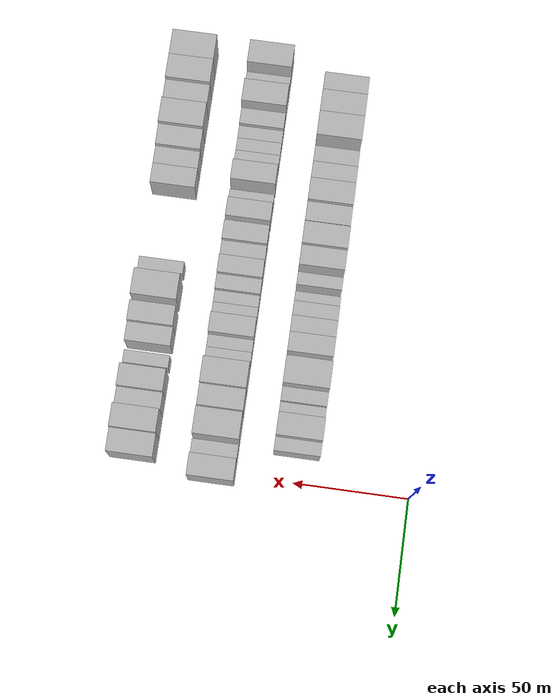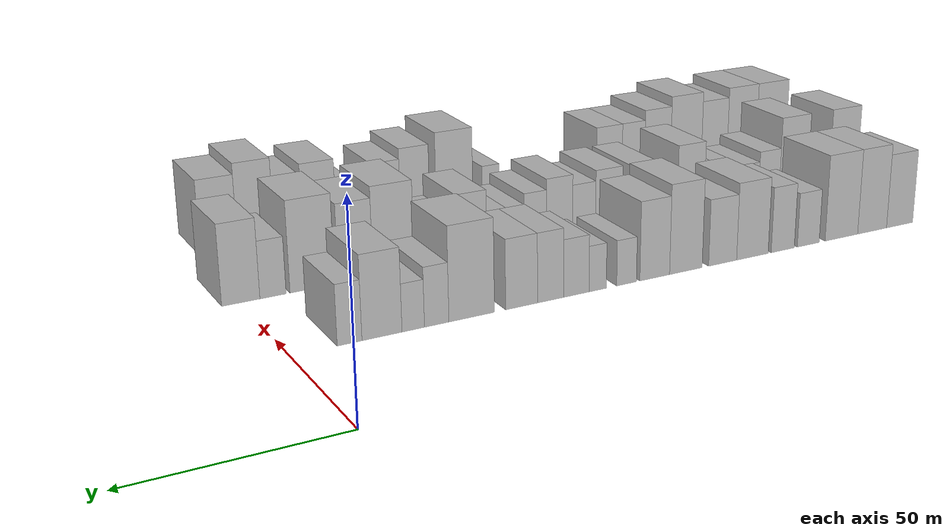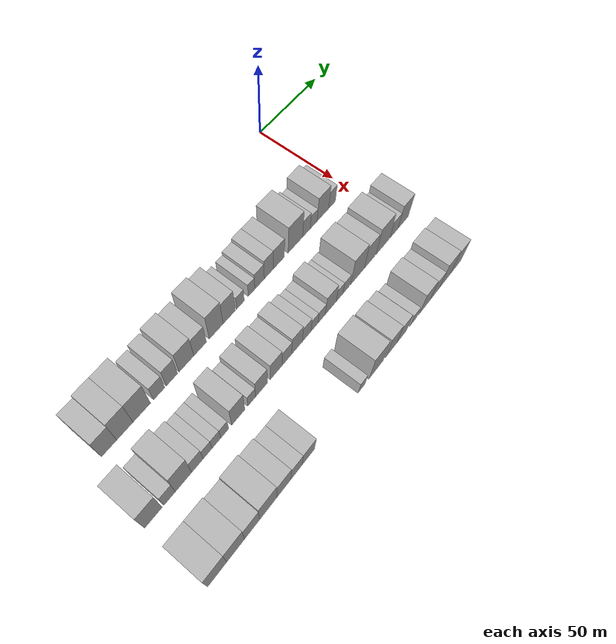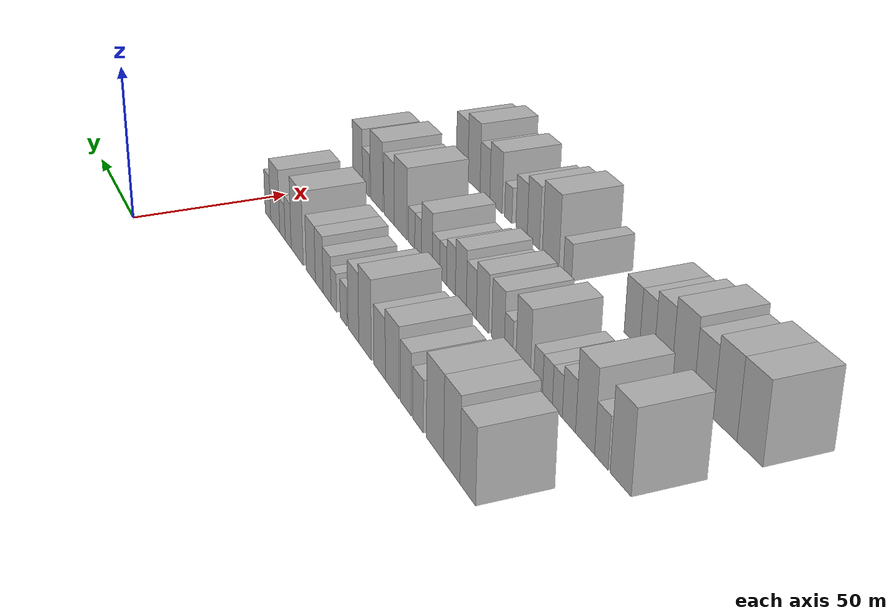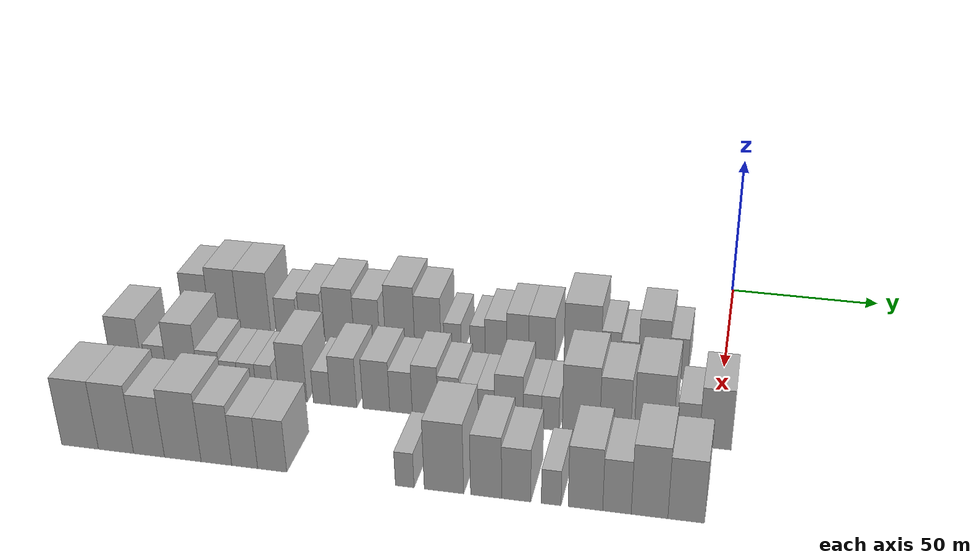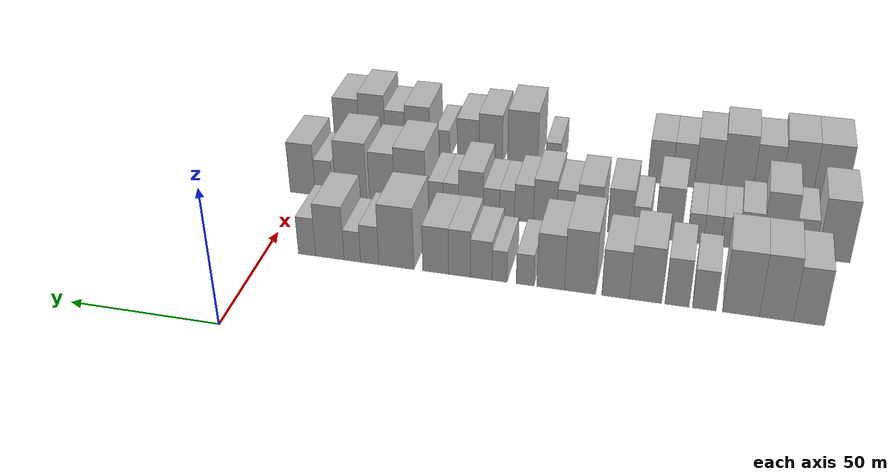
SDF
<sdf version="1.6">
 <world name="default">
  <model name="building_19">
   <static>1</static>
   <pose>50.0000 -176.7183 0 0.000000 0.000000 0.000000</pose>
   <link name="link">
    <pose>0 0 10.50 0 0 0</pose>
    <collision name="collision"><geometry><box><size>20.0000 9.3626 21.0000</size></box></geometry></collision>
    <visual name="visual">
     <cast_shadows>0</cast_shadows>
     <geometry><box><size>20.0000 9.3626 21.0000</size></box></geometry>
     <material>
      <script>
       <uri>model://HANNAS_wall/materials/scripts</uri>
       <uri>model://HANNAS_wall/materials/textures</uri>
       <name>vrc/HANNAS_wall</name>
      </script>
     </material>
    </visual>
   </link>
  </model>
  <model name="building_20">
   <static>1</static>
   <pose>50.0000 -166.9501 0 0.000000 0.000000 0.000000</pose>
   <link name="link">
    <pose>0 0 12.00 0 0 0</pose>
    <collision name="collision"><geometry><box><size>20.0000 10.1739 24.0000</size></box></geometry></collision>
    <visual name="visual">
     <cast_shadows>0</cast_shadows>
     <geometry><box><size>20.0000 10.1739 24.0000</size></box></geometry>
     <material>
      <script>
       <uri>model://HANNAS_wall/materials/scripts</uri>
       <uri>model://HANNAS_wall/materials/textures</uri>
       <name>vrc/HANNAS_wall</name>
      </script>
     </material>
    </visual>
   </link>
  </model>
  <model name="building_21">
   <static>1</static>
   <pose>50.0000 -156.2615 0 0.000000 0.000000 0.000000</pose>
   <link name="link">
    <pose>0 0 12.00 0 0 0</pose>
    <collision name="collision"><geometry><box><size>20.0000 11.2033 24.0000</size></box></geometry></collision>
    <visual name="visual">
     <cast_shadows>0</cast_shadows>
     <geometry><box><size>20.0000 11.2033 24.0000</size></box></geometry>
     <material>
      <script>
       <uri>model://HANNAS_wall/materials/scripts</uri>
       <uri>model://HANNAS_wall/materials/textures</uri>
       <name>vrc/HANNAS_wall</name>
      </script>
     </material>
    </visual>
   </link>
  </model>
  <model name="building_22">
   <static>1</static>
   <pose>50.0000 -144.9928 0 0.000000 0.000000 0.000000</pose>
   <link name="link">
    <pose>0 0 7.50 0 0 0</pose>
    <collision name="collision"><geometry><box><size>20.0000 7.3341 15.0000</size></box></geometry></collision>
    <visual name="visual">
     <cast_shadows>0</cast_shadows>
     <geometry><box><size>20.0000 7.3341 15.0000</size></box></geometry>
     <material>
      <script>
       <uri>model://HANNAS_wall/materials/scripts</uri>
       <uri>model://HANNAS_wall/materials/textures</uri>
       <name>vrc/HANNAS_wall</name>
      </script>
     </material>
    </visual>
   </link>
  </model>
  <model name="building_23">
   <static>1</static>
   <pose>50.0000 -136.5323 0 0.000000 0.000000 0.000000</pose>
   <link name="link">
    <pose>0 0 9.00 0 0 0</pose>
    <collision name="collision"><geometry><box><size>20.0000 7.5868 18.0000</size></box></geometry></collision>
    <visual name="visual">
     <cast_shadows>0</cast_shadows>
     <geometry><box><size>20.0000 7.5868 18.0000</size></box></geometry>
     <material>
      <script>
       <uri>model://HANNAS_wall/materials/scripts</uri>
       <uri>model://HANNAS_wall/materials/textures</uri>
       <name>vrc/HANNAS_wall</name>
      </script>
     </material>
    </visual>
   </link>
  </model>
  <model name="building_24">
   <static>1</static>
   <pose>50.0000 -126.6747 0 0.000000 0.000000 0.000000</pose>
   <link name="link">
    <pose>0 0 10.50 0 0 0</pose>
    <collision name="collision"><geometry><box><size>20.0000 10.1284 21.0000</size></box></geometry></collision>
    <visual name="visual">
     <cast_shadows>0</cast_shadows>
     <geometry><box><size>20.0000 10.1284 21.0000</size></box></geometry>
     <material>
      <script>
       <uri>model://HANNAS_wall/materials/scripts</uri>
       <uri>model://HANNAS_wall/materials/textures</uri>
       <name>vrc/HANNAS_wall</name>
      </script>
     </material>
    </visual>
   </link>
  </model>
  <model name="building_25">
   <static>1</static>
   <pose>50.0000 -117.2045 0 0.000000 0.000000 0.000000</pose>
   <link name="link">
    <pose>0 0 9.00 0 0 0</pose>
    <collision name="collision"><geometry><box><size>20.0000 8.8121 18.0000</size></box></geometry></collision>
    <visual name="visual">
     <cast_shadows>0</cast_shadows>
     <geometry><box><size>20.0000 8.8121 18.0000</size></box></geometry>
     <material>
      <script>
       <uri>model://HANNAS_wall/materials/scripts</uri>
       <uri>model://HANNAS_wall/materials/textures</uri>
       <name>vrc/HANNAS_wall</name>
      </script>
     </material>
    </visual>
   </link>
  </model>
  <model name="building_26">
   <static>1</static>
   <pose>50.0000 -105.8150 0 0.000000 0.000000 0.000000</pose>
   <link name="link">
    <pose>0 0 12.00 0 0 0</pose>
    <collision name="collision"><geometry><box><size>20.0000 9.9670 24.0000</size></box></geometry></collision>
    <visual name="visual">
     <cast_shadows>0</cast_shadows>
     <geometry><box><size>20.0000 9.9670 24.0000</size></box></geometry>
     <material>
      <script>
       <uri>model://HANNAS_wall/materials/scripts</uri>
       <uri>model://HANNAS_wall/materials/textures</uri>
       <name>vrc/HANNAS_wall</name>
      </script>
     </material>
    </visual>
   </link>
  </model>
  <model name="building_27">
   <static>1</static>
   <pose>50.0000 -96.3800 0 0.000000 0.000000 0.000000</pose>
   <link name="link">
    <pose>0 0 10.50 0 0 0</pose>
    <collision name="collision"><geometry><box><size>20.0000 8.9029 21.0000</size></box></geometry></collision>
    <visual name="visual">
     <cast_shadows>0</cast_shadows>
     <geometry><box><size>20.0000 8.9029 21.0000</size></box></geometry>
     <material>
      <script>
       <uri>model://HANNAS_wall/materials/scripts</uri>
       <uri>model://HANNAS_wall/materials/textures</uri>
       <name>vrc/HANNAS_wall</name>
      </script>
     </material>
    </visual>
   </link>
  </model>
  <model name="building_28">
   <static>1</static>
   <pose>50.0000 -88.0359 0 0.000000 0.000000 0.000000</pose>
   <link name="link">
    <pose>0 0 6.00 0 0 0</pose>
    <collision name="collision"><geometry><box><size>20.0000 5.7853 12.0000</size></box></geometry></collision>
    <visual name="visual">
     <cast_shadows>0</cast_shadows>
     <geometry><box><size>20.0000 5.7853 12.0000</size></box></geometry>
     <material>
      <script>
       <uri>model://HANNAS_wall/materials/scripts</uri>
       <uri>model://HANNAS_wall/materials/textures</uri>
       <name>vrc/HANNAS_wall</name>
      </script>
     </material>
    </visual>
   </link>
  </model>
  <model name="building_29">
   <static>1</static>
   <pose>50.0000 -79.6568 0 0.000000 0.000000 0.000000</pose>
   <link name="link">
    <pose>0 0 6.00 0 0 0</pose>
    <collision name="collision"><geometry><box><size>20.0000 4.9729 12.0000</size></box></geometry></collision>
    <visual name="visual">
     <cast_shadows>0</cast_shadows>
     <geometry><box><size>20.0000 4.9729 12.0000</size></box></geometry>
     <material>
      <script>
       <uri>model://HANNAS_wall/materials/scripts</uri>
       <uri>model://HANNAS_wall/materials/textures</uri>
       <name>vrc/HANNAS_wall</name>
      </script>
     </material>
    </visual>
   </link>
  </model>
  <model name="building_30">
   <static>1</static>
   <pose>50.0000 -73.5913 0 0.000000 0.000000 0.000000</pose>
   <link name="link">
    <pose>0 0 7.50 0 0 0</pose>
    <collision name="collision"><geometry><box><size>20.0000 7.1581 15.0000</size></box></geometry></collision>
    <visual name="visual">
     <cast_shadows>0</cast_shadows>
     <geometry><box><size>20.0000 7.1581 15.0000</size></box></geometry>
     <material>
      <script>
       <uri>model://HANNAS_wall/materials/scripts</uri>
       <uri>model://HANNAS_wall/materials/textures</uri>
       <name>vrc/HANNAS_wall</name>
      </script>
     </material>
    </visual>
   </link>
  </model>
  <model name="building_31">
   <static>1</static>
   <pose>50.0000 -66.3682 0 0.000000 0.000000 0.000000</pose>
   <link name="link">
    <pose>0 0 9.00 0 0 0</pose>
    <collision name="collision"><geometry><box><size>20.0000 7.2880 18.0000</size></box></geometry></collision>
    <visual name="visual">
     <cast_shadows>0</cast_shadows>
     <geometry><box><size>20.0000 7.2880 18.0000</size></box></geometry>
     <material>
      <script>
       <uri>model://HANNAS_wall/materials/scripts</uri>
       <uri>model://HANNAS_wall/materials/textures</uri>
       <name>vrc/HANNAS_wall</name>
      </script>
     </material>
    </visual>
   </link>
  </model>
  <model name="building_32">
   <static>1</static>
   <pose>50.0000 -58.3895 0 0.000000 0.000000 0.000000</pose>
   <link name="link">
    <pose>0 0 9.00 0 0 0</pose>
    <collision name="collision"><geometry><box><size>20.0000 8.6693 18.0000</size></box></geometry></collision>
    <visual name="visual">
     <cast_shadows>0</cast_shadows>
     <geometry><box><size>20.0000 8.6693 18.0000</size></box></geometry>
     <material>
      <script>
       <uri>model://HANNAS_wall/materials/scripts</uri>
       <uri>model://HANNAS_wall/materials/textures</uri>
       <name>vrc/HANNAS_wall</name>
      </script>
     </material>
    </visual>
   </link>
  </model>
  <model name="building_33">
   <static>1</static>
   <pose>50.0000 -45.0629 0 0.000000 0.000000 0.000000</pose>
   <link name="link">
    <pose>0 0 12.00 0 0 0</pose>
    <collision name="collision"><geometry><box><size>20.0000 11.9839 24.0000</size></box></geometry></collision>
    <visual name="visual">
     <cast_shadows>0</cast_shadows>
     <geometry><box><size>20.0000 11.9839 24.0000</size></box></geometry>
     <material>
      <script>
       <uri>model://HANNAS_wall/materials/scripts</uri>
       <uri>model://HANNAS_wall/materials/textures</uri>
       <name>vrc/HANNAS_wall</name>
      </script>
     </material>
    </visual>
   </link>
  </model>
  <model name="building_34">
   <static>1</static>
   <pose>50.0000 -35.9239 0 0.000000 0.000000 0.000000</pose>
   <link name="link">
    <pose>0 0 7.50 0 0 0</pose>
    <collision name="collision"><geometry><box><size>20.0000 6.2943 15.0000</size></box></geometry></collision>
    <visual name="visual">
     <cast_shadows>0</cast_shadows>
     <geometry><box><size>20.0000 6.2943 15.0000</size></box></geometry>
     <material>
      <script>
       <uri>model://HANNAS_wall/materials/scripts</uri>
       <uri>model://HANNAS_wall/materials/textures</uri>
       <name>vrc/HANNAS_wall</name>
      </script>
     </material>
    </visual>
   </link>
  </model>
  <model name="building_35">
   <static>1</static>
   <pose>50.0000 -29.9349 0 0.000000 0.000000 0.000000</pose>
   <link name="link">
    <pose>0 0 6.00 0 0 0</pose>
    <collision name="collision"><geometry><box><size>20.0000 5.6836 12.0000</size></box></geometry></collision>
    <visual name="visual">
     <cast_shadows>0</cast_shadows>
     <geometry><box><size>20.0000 5.6836 12.0000</size></box></geometry>
     <material>
      <script>
       <uri>model://HANNAS_wall/materials/scripts</uri>
       <uri>model://HANNAS_wall/materials/textures</uri>
       <name>vrc/HANNAS_wall</name>
      </script>
     </material>
    </visual>
   </link>
  </model>
  <model name="building_36">
   <static>1</static>
   <pose>50.0000 -22.1272 0 0.000000 0.000000 0.000000</pose>
   <link name="link">
    <pose>0 0 10.50 0 0 0</pose>
    <collision name="collision"><geometry><box><size>20.0000 9.9319 21.0000</size></box></geometry></collision>
    <visual name="visual">
     <cast_shadows>0</cast_shadows>
     <geometry><box><size>20.0000 9.9319 21.0000</size></box></geometry>
     <material>
      <script>
       <uri>model://HANNAS_wall/materials/scripts</uri>
       <uri>model://HANNAS_wall/materials/textures</uri>
       <name>vrc/HANNAS_wall</name>
      </script>
     </material>
    </visual>
   </link>
  </model>
  <model name="building_37">
   <static>1</static>
   <pose>50.0000 -14.1544 0 0.000000 0.000000 0.000000</pose>
   <link name="link">
    <pose>0 0 7.50 0 0 0</pose>
    <collision name="collision"><geometry><box><size>20.0000 6.0138 15.0000</size></box></geometry></collision>
    <visual name="visual">
     <cast_shadows>0</cast_shadows>
     <geometry><box><size>20.0000 6.0138 15.0000</size></box></geometry>
     <material>
      <script>
       <uri>model://HANNAS_wall/materials/scripts</uri>
       <uri>model://HANNAS_wall/materials/textures</uri>
       <name>vrc/HANNAS_wall</name>
      </script>
     </material>
    </visual>
   </link>
  </model>
  <model name="building_98">
   <static>1</static>
   <pose>85.0000 -185.4646 0 0.000000 0.000000 0.000000</pose>
   <link name="link">
    <pose>0 0 12.00 0 0 0</pose>
    <collision name="collision"><geometry><box><size>20.0000 10.6071 24.0000</size></box></geometry></collision>
    <visual name="visual">
     <cast_shadows>0</cast_shadows>
     <geometry><box><size>20.0000 10.6071 24.0000</size></box></geometry>
     <material>
      <script>
       <uri>model://HANNAS_wall/materials/scripts</uri>
       <uri>model://HANNAS_wall/materials/textures</uri>
       <name>vrc/HANNAS_wall</name>
      </script>
     </material>
    </visual>
   </link>
  </model>
  <model name="building_99">
   <static>1</static>
   <pose>85.0000 -175.6319 0 0.000000 0.000000 0.000000</pose>
   <link name="link">
    <pose>0 0 7.50 0 0 0</pose>
    <collision name="collision"><geometry><box><size>20.0000 7.0582 15.0000</size></box></geometry></collision>
    <visual name="visual">
     <cast_shadows>0</cast_shadows>
     <geometry><box><size>20.0000 7.0582 15.0000</size></box></geometry>
     <material>
      <script>
       <uri>model://HANNAS_wall/materials/scripts</uri>
       <uri>model://HANNAS_wall/materials/textures</uri>
       <name>vrc/HANNAS_wall</name>
      </script>
     </material>
    </visual>
   </link>
  </model>
  <model name="building_100">
   <static>1</static>
   <pose>85.0000 -166.9667 0 0.000000 0.000000 0.000000</pose>
   <link name="link">
    <pose>0 0 12.00 0 0 0</pose>
    <collision name="collision"><geometry><box><size>20.0000 10.2723 24.0000</size></box></geometry></collision>
    <visual name="visual">
     <cast_shadows>0</cast_shadows>
     <geometry><box><size>20.0000 10.2723 24.0000</size></box></geometry>
     <material>
      <script>
       <uri>model://HANNAS_wall/materials/scripts</uri>
       <uri>model://HANNAS_wall/materials/textures</uri>
       <name>vrc/HANNAS_wall</name>
      </script>
     </material>
    </visual>
   </link>
  </model>
  <model name="building_101">
   <static>1</static>
   <pose>85.0000 -158.1169 0 0.000000 0.000000 0.000000</pose>
   <link name="link">
    <pose>0 0 7.50 0 0 0</pose>
    <collision name="collision"><geometry><box><size>20.0000 7.4273 15.0000</size></box></geometry></collision>
    <visual name="visual">
     <cast_shadows>0</cast_shadows>
     <geometry><box><size>20.0000 7.4273 15.0000</size></box></geometry>
     <material>
      <script>
       <uri>model://HANNAS_wall/materials/scripts</uri>
       <uri>model://HANNAS_wall/materials/textures</uri>
       <name>vrc/HANNAS_wall</name>
      </script>
     </material>
    </visual>
   </link>
  </model>
  <model name="building_102">
   <static>1</static>
   <pose>85.0000 -151.5173 0 0.000000 0.000000 0.000000</pose>
   <link name="link">
    <pose>0 0 6.00 0 0 0</pose>
    <collision name="collision"><geometry><box><size>20.0000 5.7720 12.0000</size></box></geometry></collision>
    <visual name="visual">
     <cast_shadows>0</cast_shadows>
     <geometry><box><size>20.0000 5.7720 12.0000</size></box></geometry>
     <material>
      <script>
       <uri>model://HANNAS_wall/materials/scripts</uri>
       <uri>model://HANNAS_wall/materials/textures</uri>
       <name>vrc/HANNAS_wall</name>
      </script>
     </material>
    </visual>
   </link>
  </model>
  <model name="building_103">
   <static>1</static>
   <pose>85.0000 -145.7244 0 0.000000 0.000000 0.000000</pose>
   <link name="link">
    <pose>0 0 6.00 0 0 0</pose>
    <collision name="collision"><geometry><box><size>20.0000 5.8138 12.0000</size></box></geometry></collision>
    <visual name="visual">
     <cast_shadows>0</cast_shadows>
     <geometry><box><size>20.0000 5.8138 12.0000</size></box></geometry>
     <material>
      <script>
       <uri>model://HANNAS_wall/materials/scripts</uri>
       <uri>model://HANNAS_wall/materials/textures</uri>
       <name>vrc/HANNAS_wall</name>
      </script>
     </material>
    </visual>
   </link>
  </model>
  <model name="building_104">
   <static>1</static>
   <pose>85.0000 -140.1190 0 0.000000 0.000000 0.000000</pose>
   <link name="link">
    <pose>0 0 6.00 0 0 0</pose>
    <collision name="collision"><geometry><box><size>20.0000 5.3971 12.0000</size></box></geometry></collision>
    <visual name="visual">
     <cast_shadows>0</cast_shadows>
     <geometry><box><size>20.0000 5.3971 12.0000</size></box></geometry>
     <material>
      <script>
       <uri>model://HANNAS_wall/materials/scripts</uri>
       <uri>model://HANNAS_wall/materials/textures</uri>
       <name>vrc/HANNAS_wall</name>
      </script>
     </material>
    </visual>
   </link>
  </model>
  <model name="building_105">
   <static>1</static>
   <pose>85.0000 -130.8782 0 0.000000 0.000000 0.000000</pose>
   <link name="link">
    <pose>0 0 10.50 0 0 0</pose>
    <collision name="collision"><geometry><box><size>20.0000 9.0844 21.0000</size></box></geometry></collision>
    <visual name="visual">
     <cast_shadows>0</cast_shadows>
     <geometry><box><size>20.0000 9.0844 21.0000</size></box></geometry>
     <material>
      <script>
       <uri>model://HANNAS_wall/materials/scripts</uri>
       <uri>model://HANNAS_wall/materials/textures</uri>
       <name>vrc/HANNAS_wall</name>
      </script>
     </material>
    </visual>
   </link>
  </model>
  <model name="building_106">
   <static>1</static>
   <pose>85.0000 -121.5744 0 0.000000 0.000000 0.000000</pose>
   <link name="link">
    <pose>0 0 6.00 0 0 0</pose>
    <collision name="collision"><geometry><box><size>20.0000 5.5231 12.0000</size></box></geometry></collision>
    <visual name="visual">
     <cast_shadows>0</cast_shadows>
     <geometry><box><size>20.0000 5.5231 12.0000</size></box></geometry>
     <material>
      <script>
       <uri>model://HANNAS_wall/materials/scripts</uri>
       <uri>model://HANNAS_wall/materials/textures</uri>
       <name>vrc/HANNAS_wall</name>
      </script>
     </material>
    </visual>
   </link>
  </model>
  <model name="building_107">
   <static>1</static>
   <pose>85.0000 -114.5613 0 0.000000 0.000000 0.000000</pose>
   <link name="link">
    <pose>0 0 9.00 0 0 0</pose>
    <collision name="collision"><geometry><box><size>20.0000 8.5031 18.0000</size></box></geometry></collision>
    <visual name="visual">
     <cast_shadows>0</cast_shadows>
     <geometry><box><size>20.0000 8.5031 18.0000</size></box></geometry>
     <material>
      <script>
       <uri>model://HANNAS_wall/materials/scripts</uri>
       <uri>model://HANNAS_wall/materials/textures</uri>
       <name>vrc/HANNAS_wall</name>
      </script>
     </material>
    </visual>
   </link>
  </model>
  <model name="building_108">
   <static>1</static>
   <pose>85.0000 -104.0342 0 0.000000 0.000000 0.000000</pose>
   <link name="link">
    <pose>0 0 9.00 0 0 0</pose>
    <collision name="collision"><geometry><box><size>20.0000 8.5511 18.0000</size></box></geometry></collision>
    <visual name="visual">
     <cast_shadows>0</cast_shadows>
     <geometry><box><size>20.0000 8.5511 18.0000</size></box></geometry>
     <material>
      <script>
       <uri>model://HANNAS_wall/materials/scripts</uri>
       <uri>model://HANNAS_wall/materials/textures</uri>
       <name>vrc/HANNAS_wall</name>
      </script>
     </material>
    </visual>
   </link>
  </model>
  <model name="building_109">
   <static>1</static>
   <pose>85.0000 -96.1743 0 0.000000 0.000000 0.000000</pose>
   <link name="link">
    <pose>0 0 7.50 0 0 0</pose>
    <collision name="collision"><geometry><box><size>20.0000 7.1687 15.0000</size></box></geometry></collision>
    <visual name="visual">
     <cast_shadows>0</cast_shadows>
     <geometry><box><size>20.0000 7.1687 15.0000</size></box></geometry>
     <material>
      <script>
       <uri>model://HANNAS_wall/materials/scripts</uri>
       <uri>model://HANNAS_wall/materials/textures</uri>
       <name>vrc/HANNAS_wall</name>
      </script>
     </material>
    </visual>
   </link>
  </model>
  <model name="building_110">
   <static>1</static>
   <pose>85.0000 -88.5409 0 0.000000 0.000000 0.000000</pose>
   <link name="link">
    <pose>0 0 9.00 0 0 0</pose>
    <collision name="collision"><geometry><box><size>20.0000 8.0981 18.0000</size></box></geometry></collision>
    <visual name="visual">
     <cast_shadows>0</cast_shadows>
     <geometry><box><size>20.0000 8.0981 18.0000</size></box></geometry>
     <material>
      <script>
       <uri>model://HANNAS_wall/materials/scripts</uri>
       <uri>model://HANNAS_wall/materials/textures</uri>
       <name>vrc/HANNAS_wall</name>
      </script>
     </material>
    </visual>
   </link>
  </model>
  <model name="building_111">
   <static>1</static>
   <pose>85.0000 -81.1502 0 0.000000 0.000000 0.000000</pose>
   <link name="link">
    <pose>0 0 7.50 0 0 0</pose>
    <collision name="collision"><geometry><box><size>20.0000 6.6832 15.0000</size></box></geometry></collision>
    <visual name="visual">
     <cast_shadows>0</cast_shadows>
     <geometry><box><size>20.0000 6.6832 15.0000</size></box></geometry>
     <material>
      <script>
       <uri>model://HANNAS_wall/materials/scripts</uri>
       <uri>model://HANNAS_wall/materials/textures</uri>
       <name>vrc/HANNAS_wall</name>
      </script>
     </material>
    </visual>
   </link>
  </model>
  <model name="building_112">
   <static>1</static>
   <pose>85.0000 -75.1348 0 0.000000 0.000000 0.000000</pose>
   <link name="link">
    <pose>0 0 6.00 0 0 0</pose>
    <collision name="collision"><geometry><box><size>20.0000 5.3477 12.0000</size></box></geometry></collision>
    <visual name="visual">
     <cast_shadows>0</cast_shadows>
     <geometry><box><size>20.0000 5.3477 12.0000</size></box></geometry>
     <material>
      <script>
       <uri>model://HANNAS_wall/materials/scripts</uri>
       <uri>model://HANNAS_wall/materials/textures</uri>
       <name>vrc/HANNAS_wall</name>
      </script>
     </material>
    </visual>
   </link>
  </model>
  <model name="building_113">
   <static>1</static>
   <pose>85.0000 -69.5720 0 0.000000 0.000000 0.000000</pose>
   <link name="link">
    <pose>0 0 6.00 0 0 0</pose>
    <collision name="collision"><geometry><box><size>20.0000 5.7778 12.0000</size></box></geometry></collision>
    <visual name="visual">
     <cast_shadows>0</cast_shadows>
     <geometry><box><size>20.0000 5.7778 12.0000</size></box></geometry>
     <material>
      <script>
       <uri>model://HANNAS_wall/materials/scripts</uri>
       <uri>model://HANNAS_wall/materials/textures</uri>
       <name>vrc/HANNAS_wall</name>
      </script>
     </material>
    </visual>
   </link>
  </model>
  <model name="building_114">
   <static>1</static>
   <pose>85.0000 -62.2672 0 0.000000 0.000000 0.000000</pose>
   <link name="link">
    <pose>0 0 9.00 0 0 0</pose>
    <collision name="collision"><geometry><box><size>20.0000 8.8319 18.0000</size></box></geometry></collision>
    <visual name="visual">
     <cast_shadows>0</cast_shadows>
     <geometry><box><size>20.0000 8.8319 18.0000</size></box></geometry>
     <material>
      <script>
       <uri>model://HANNAS_wall/materials/scripts</uri>
       <uri>model://HANNAS_wall/materials/textures</uri>
       <name>vrc/HANNAS_wall</name>
      </script>
     </material>
    </visual>
   </link>
  </model>
  <model name="building_115">
   <static>1</static>
   <pose>85.0000 -55.0907 0 0.000000 0.000000 0.000000</pose>
   <link name="link">
    <pose>0 0 6.00 0 0 0</pose>
    <collision name="collision"><geometry><box><size>20.0000 5.5210 12.0000</size></box></geometry></collision>
    <visual name="visual">
     <cast_shadows>0</cast_shadows>
     <geometry><box><size>20.0000 5.5210 12.0000</size></box></geometry>
     <material>
      <script>
       <uri>model://HANNAS_wall/materials/scripts</uri>
       <uri>model://HANNAS_wall/materials/textures</uri>
       <name>vrc/HANNAS_wall</name>
      </script>
     </material>
    </visual>
   </link>
  </model>
  <model name="building_116">
   <static>1</static>
   <pose>85.0000 -49.6133 0 0.000000 0.000000 0.000000</pose>
   <link name="link">
    <pose>0 0 6.00 0 0 0</pose>
    <collision name="collision"><geometry><box><size>20.0000 5.4338 12.0000</size></box></geometry></collision>
    <visual name="visual">
     <cast_shadows>0</cast_shadows>
     <geometry><box><size>20.0000 5.4338 12.0000</size></box></geometry>
     <material>
      <script>
       <uri>model://HANNAS_wall/materials/scripts</uri>
       <uri>model://HANNAS_wall/materials/textures</uri>
       <name>vrc/HANNAS_wall</name>
      </script>
     </material>
    </visual>
   </link>
  </model>
  <model name="building_117">
   <static>1</static>
   <pose>85.0000 -40.2207 0 0.000000 0.000000 0.000000</pose>
   <link name="link">
    <pose>0 0 12.00 0 0 0</pose>
    <collision name="collision"><geometry><box><size>20.0000 11.3514 24.0000</size></box></geometry></collision>
    <visual name="visual">
     <cast_shadows>0</cast_shadows>
     <geometry><box><size>20.0000 11.3514 24.0000</size></box></geometry>
     <material>
      <script>
       <uri>model://HANNAS_wall/materials/scripts</uri>
       <uri>model://HANNAS_wall/materials/textures</uri>
       <name>vrc/HANNAS_wall</name>
      </script>
     </material>
    </visual>
   </link>
  </model>
  <model name="building_118">
   <static>1</static>
   <pose>85.0000 -29.8836 0 0.000000 0.000000 0.000000</pose>
   <link name="link">
    <pose>0 0 10.50 0 0 0</pose>
    <collision name="collision"><geometry><box><size>20.0000 9.3228 21.0000</size></box></geometry></collision>
    <visual name="visual">
     <cast_shadows>0</cast_shadows>
     <geometry><box><size>20.0000 9.3228 21.0000</size></box></geometry>
     <material>
      <script>
       <uri>model://HANNAS_wall/materials/scripts</uri>
       <uri>model://HANNAS_wall/materials/textures</uri>
       <name>vrc/HANNAS_wall</name>
      </script>
     </material>
    </visual>
   </link>
  </model>
  <model name="building_119">
   <static>1</static>
   <pose>85.0000 -18.3812 0 0.000000 0.000000 0.000000</pose>
   <link name="link">
    <pose>0 0 12.00 0 0 0</pose>
    <collision name="collision"><geometry><box><size>20.0000 11.6820 24.0000</size></box></geometry></collision>
    <visual name="visual">
     <cast_shadows>0</cast_shadows>
     <geometry><box><size>20.0000 11.6820 24.0000</size></box></geometry>
     <material>
      <script>
       <uri>model://HANNAS_wall/materials/scripts</uri>
       <uri>model://HANNAS_wall/materials/textures</uri>
       <name>vrc/HANNAS_wall</name>
      </script>
     </material>
    </visual>
   </link>
  </model>
  <model name="building_120">
   <static>1</static>
   <pose>85.0000 -8.1938 0 0.000000 0.000000 0.000000</pose>
   <link name="link">
    <pose>0 0 7.50 0 0 0</pose>
    <collision name="collision"><geometry><box><size>20.0000 6.6928 15.0000</size></box></geometry></collision>
    <visual name="visual">
     <cast_shadows>0</cast_shadows>
     <geometry><box><size>20.0000 6.6928 15.0000</size></box></geometry>
     <material>
      <script>
       <uri>model://HANNAS_wall/materials/scripts</uri>
       <uri>model://HANNAS_wall/materials/textures</uri>
       <name>vrc/HANNAS_wall</name>
      </script>
     </material>
    </visual>
   </link>
  </model>
  <model name="building_121">
   <static>1</static>
   <pose>85.0000 -0.0575 0 0.000000 0.000000 0.000000</pose>
   <link name="link">
    <pose>0 0 10.50 0 0 0</pose>
    <collision name="collision"><geometry><box><size>20.0000 9.5799 21.0000</size></box></geometry></collision>
    <visual name="visual">
     <cast_shadows>0</cast_shadows>
     <geometry><box><size>20.0000 9.5799 21.0000</size></box></geometry>
     <material>
      <script>
       <uri>model://HANNAS_wall/materials/scripts</uri>
       <uri>model://HANNAS_wall/materials/textures</uri>
       <name>vrc/HANNAS_wall</name>
      </script>
     </material>
    </visual>
   </link>
  </model>
  <model name="building_182">
   <static>1</static>
   <pose>120.0000 -185.1397 0 0.000000 0.000000 0.000000</pose>
   <link name="link">
    <pose>0 0 12.00 0 0 0</pose>
    <collision name="collision"><geometry><box><size>20.0000 11.6709 24.0000</size></box></geometry></collision>
    <visual name="visual">
     <cast_shadows>0</cast_shadows>
     <geometry><box><size>20.0000 11.6709 24.0000</size></box></geometry>
     <material>
      <script>
       <uri>model://HANNAS_wall/materials/scripts</uri>
       <uri>model://HANNAS_wall/materials/textures</uri>
       <name>vrc/HANNAS_wall</name>
      </script>
     </material>
    </visual>
   </link>
  </model>
  <model name="building_183">
   <static>1</static>
   <pose>120.0000 -173.7274 0 0.000000 0.000000 0.000000</pose>
   <link name="link">
    <pose>0 0 12.00 0 0 0</pose>
    <collision name="collision"><geometry><box><size>20.0000 11.1538 24.0000</size></box></geometry></collision>
    <visual name="visual">
     <cast_shadows>0</cast_shadows>
     <geometry><box><size>20.0000 11.1538 24.0000</size></box></geometry>
     <material>
      <script>
       <uri>model://HANNAS_wall/materials/scripts</uri>
       <uri>model://HANNAS_wall/materials/textures</uri>
       <name>vrc/HANNAS_wall</name>
      </script>
     </material>
    </visual>
   </link>
  </model>
  <model name="building_184">
   <static>1</static>
   <pose>120.0000 -163.3151 0 0.000000 0.000000 0.000000</pose>
   <link name="link">
    <pose>0 0 10.50 0 0 0</pose>
    <collision name="collision"><geometry><box><size>20.0000 9.6706 21.0000</size></box></geometry></collision>
    <visual name="visual">
     <cast_shadows>0</cast_shadows>
     <geometry><box><size>20.0000 9.6706 21.0000</size></box></geometry>
     <material>
      <script>
       <uri>model://HANNAS_wall/materials/scripts</uri>
       <uri>model://HANNAS_wall/materials/textures</uri>
       <name>vrc/HANNAS_wall</name>
      </script>
     </material>
    </visual>
   </link>
  </model>
  <model name="building_185">
   <static>1</static>
   <pose>120.0000 -152.7936 0 0.000000 0.000000 0.000000</pose>
   <link name="link">
    <pose>0 0 12.00 0 0 0</pose>
    <collision name="collision"><geometry><box><size>20.0000 11.3725 24.0000</size></box></geometry></collision>
    <visual name="visual">
     <cast_shadows>0</cast_shadows>
     <geometry><box><size>20.0000 11.3725 24.0000</size></box></geometry>
     <material>
      <script>
       <uri>model://HANNAS_wall/materials/scripts</uri>
       <uri>model://HANNAS_wall/materials/textures</uri>
       <name>vrc/HANNAS_wall</name>
      </script>
     </material>
    </visual>
   </link>
  </model>
  <model name="building_186">
   <static>1</static>
   <pose>120.0000 -142.3837 0 0.000000 0.000000 0.000000</pose>
   <link name="link">
    <pose>0 0 10.50 0 0 0</pose>
    <collision name="collision"><geometry><box><size>20.0000 9.4473 21.0000</size></box></geometry></collision>
    <visual name="visual">
     <cast_shadows>0</cast_shadows>
     <geometry><box><size>20.0000 9.4473 21.0000</size></box></geometry>
     <material>
      <script>
       <uri>model://HANNAS_wall/materials/scripts</uri>
       <uri>model://HANNAS_wall/materials/textures</uri>
       <name>vrc/HANNAS_wall</name>
      </script>
     </material>
    </visual>
   </link>
  </model>
  <model name="building_187">
   <static>1</static>
   <pose>120.0000 -133.6986 0 0.000000 0.000000 0.000000</pose>
   <link name="link">
    <pose>0 0 9.00 0 0 0</pose>
    <collision name="collision"><geometry><box><size>20.0000 7.9229 18.0000</size></box></geometry></collision>
    <visual name="visual">
     <cast_shadows>0</cast_shadows>
     <geometry><box><size>20.0000 7.9229 18.0000</size></box></geometry>
     <material>
      <script>
       <uri>model://HANNAS_wall/materials/scripts</uri>
       <uri>model://HANNAS_wall/materials/textures</uri>
       <name>vrc/HANNAS_wall</name>
      </script>
     </material>
    </visual>
   </link>
  </model>
  <model name="building_188">
   <static>1</static>
   <pose>120.0000 -125.3036 0 0.000000 0.000000 0.000000</pose>
   <link name="link">
    <pose>0 0 9.00 0 0 0</pose>
    <collision name="collision"><geometry><box><size>20.0000 8.8672 18.0000</size></box></geometry></collision>
    <visual name="visual">
     <cast_shadows>0</cast_shadows>
     <geometry><box><size>20.0000 8.8672 18.0000</size></box></geometry>
     <material>
      <script>
       <uri>model://HANNAS_wall/materials/scripts</uri>
       <uri>model://HANNAS_wall/materials/textures</uri>
       <name>vrc/HANNAS_wall</name>
      </script>
     </material>
    </visual>
   </link>
  </model>
  <model name="building_189">
   <static>1</static>
   <pose>120.0000 -85.6457 0 0.000000 0.000000 0.000000</pose>
   <link name="link">
    <pose>0 0 6.00 0 0 0</pose>
    <collision name="collision"><geometry><box><size>20.0000 5.4829 12.0000</size></box></geometry></collision>
    <visual name="visual">
     <cast_shadows>0</cast_shadows>
     <geometry><box><size>20.0000 5.4829 12.0000</size></box></geometry>
     <material>
      <script>
       <uri>model://HANNAS_wall/materials/scripts</uri>
       <uri>model://HANNAS_wall/materials/textures</uri>
       <name>vrc/HANNAS_wall</name>
      </script>
     </material>
    </visual>
   </link>
  </model>
  <model name="building_190">
   <static>1</static>
   <pose>120.0000 -74.1627 0 0.000000 0.000000 0.000000</pose>
   <link name="link">
    <pose>0 0 12.00 0 0 0</pose>
    <collision name="collision"><geometry><box><size>20.0000 11.4830 24.0000</size></box></geometry></collision>
    <visual name="visual">
     <cast_shadows>0</cast_shadows>
     <geometry><box><size>20.0000 11.4830 24.0000</size></box></geometry>
     <material>
      <script>
       <uri>model://HANNAS_wall/materials/scripts</uri>
       <uri>model://HANNAS_wall/materials/textures</uri>
       <name>vrc/HANNAS_wall</name>
      </script>
     </material>
    </visual>
   </link>
  </model>
  <model name="building_191">
   <static>1</static>
   <pose>120.0000 -61.9445 0 0.000000 0.000000 0.000000</pose>
   <link name="link">
    <pose>0 0 10.50 0 0 0</pose>
    <collision name="collision"><geometry><box><size>20.0000 8.9535 21.0000</size></box></geometry></collision>
    <visual name="visual">
     <cast_shadows>0</cast_shadows>
     <geometry><box><size>20.0000 8.9535 21.0000</size></box></geometry>
     <material>
      <script>
       <uri>model://HANNAS_wall/materials/scripts</uri>
       <uri>model://HANNAS_wall/materials/textures</uri>
       <name>vrc/HANNAS_wall</name>
      </script>
     </material>
    </visual>
   </link>
  </model>
  <model name="building_192">
   <static>1</static>
   <pose>120.0000 -53.2947 0 0.000000 0.000000 0.000000</pose>
   <link name="link">
    <pose>0 0 9.00 0 0 0</pose>
    <collision name="collision"><geometry><box><size>20.0000 8.3461 18.0000</size></box></geometry></collision>
    <visual name="visual">
     <cast_shadows>0</cast_shadows>
     <geometry><box><size>20.0000 8.3461 18.0000</size></box></geometry>
     <material>
      <script>
       <uri>model://HANNAS_wall/materials/scripts</uri>
       <uri>model://HANNAS_wall/materials/textures</uri>
       <name>vrc/HANNAS_wall</name>
      </script>
     </material>
    </visual>
   </link>
  </model>
  <model name="building_193">
   <static>1</static>
   <pose>120.0000 -43.3179 0 0.000000 0.000000 0.000000</pose>
   <link name="link">
    <pose>0 0 6.00 0 0 0</pose>
    <collision name="collision"><geometry><box><size>20.0000 5.6074 12.0000</size></box></geometry></collision>
    <visual name="visual">
     <cast_shadows>0</cast_shadows>
     <geometry><box><size>20.0000 5.6074 12.0000</size></box></geometry>
     <material>
      <script>
       <uri>model://HANNAS_wall/materials/scripts</uri>
       <uri>model://HANNAS_wall/materials/textures</uri>
       <name>vrc/HANNAS_wall</name>
      </script>
     </material>
    </visual>
   </link>
  </model>
  <model name="building_194">
   <static>1</static>
   <pose>120.0000 -33.6523 0 0.000000 0.000000 0.000000</pose>
   <link name="link">
    <pose>0 0 10.50 0 0 0</pose>
    <collision name="collision"><geometry><box><size>20.0000 9.7238 21.0000</size></box></geometry></collision>
    <visual name="visual">
     <cast_shadows>0</cast_shadows>
     <geometry><box><size>20.0000 9.7238 21.0000</size></box></geometry>
     <material>
      <script>
       <uri>model://HANNAS_wall/materials/scripts</uri>
       <uri>model://HANNAS_wall/materials/textures</uri>
       <name>vrc/HANNAS_wall</name>
      </script>
     </material>
    </visual>
   </link>
  </model>
  <model name="building_195">
   <static>1</static>
   <pose>120.0000 -24.8087 0 0.000000 0.000000 0.000000</pose>
   <link name="link">
    <pose>0 0 9.00 0 0 0</pose>
    <collision name="collision"><geometry><box><size>20.0000 7.9633 18.0000</size></box></geometry></collision>
    <visual name="visual">
     <cast_shadows>0</cast_shadows>
     <geometry><box><size>20.0000 7.9633 18.0000</size></box></geometry>
     <material>
      <script>
       <uri>model://HANNAS_wall/materials/scripts</uri>
       <uri>model://HANNAS_wall/materials/textures</uri>
       <name>vrc/HANNAS_wall</name>
      </script>
     </material>
    </visual>
   </link>
  </model>
  <model name="building_196">
   <static>1</static>
   <pose>120.0000 -15.7405 0 0.000000 0.000000 0.000000</pose>
   <link name="link">
    <pose>0 0 12.00 0 0 0</pose>
    <collision name="collision"><geometry><box><size>20.0000 10.1731 24.0000</size></box></geometry></collision>
    <visual name="visual">
     <cast_shadows>0</cast_shadows>
     <geometry><box><size>20.0000 10.1731 24.0000</size></box></geometry>
     <material>
      <script>
       <uri>model://HANNAS_wall/materials/scripts</uri>
       <uri>model://HANNAS_wall/materials/textures</uri>
       <name>vrc/HANNAS_wall</name>
      </script>
     </material>
    </visual>
   </link>
  </model>
  <model name="building_197">
   <static>1</static>
   <pose>120.0000 -5.6089 0 0.000000 0.000000 0.000000</pose>
   <link name="link">
    <pose>0 0 10.50 0 0 0</pose>
    <collision name="collision"><geometry><box><size>20.0000 10.0900 21.0000</size></box></geometry></collision>
    <visual name="visual">
     <cast_shadows>0</cast_shadows>
     <geometry><box><size>20.0000 10.0900 21.0000</size></box></geometry>
     <material>
      <script>
       <uri>model://HANNAS_wall/materials/scripts</uri>
       <uri>model://HANNAS_wall/materials/textures</uri>
       <name>vrc/HANNAS_wall</name>
      </script>
     </material>
    </visual>
   </link>
  </model>
 </world>
</sdf>
